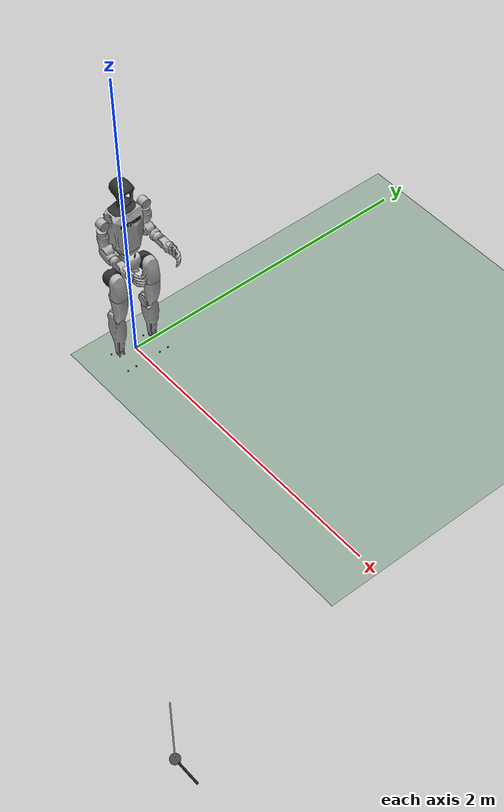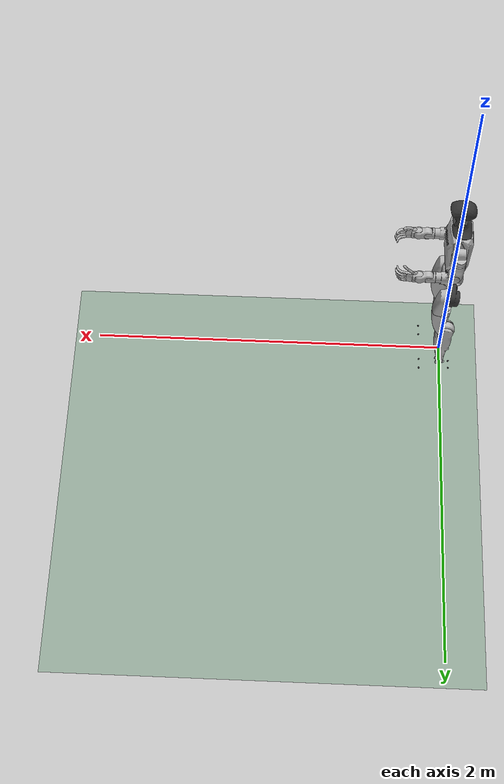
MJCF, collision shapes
<mujoco model="g1_29dof">
  <compiler angle="radian" meshdir="meshes"/>

  <option timestep="0.002" integrator="implicitfast"><flag island="disable"/></option>
  <default>
    <geom contype="1" conaffinity="1"/>
  </default>

  <asset>
    <mesh name="pelvis" file="pelvis.stl" maxhullvert="8"/>
    <mesh name="pelvis_contour_link" file="pelvis_contour_link.stl" maxhullvert="8"/>
    <mesh name="left_hip_pitch_link" file="left_hip_pitch_link.stl" maxhullvert="8"/>
    <mesh name="left_hip_roll_link" file="left_hip_roll_link.stl" maxhullvert="8"/>
    <mesh name="left_hip_yaw_link" file="left_hip_yaw_link.stl" maxhullvert="8"/>
    <mesh name="left_knee_link" file="left_knee_link.stl" maxhullvert="8"/>
    <mesh name="left_ankle_pitch_link" file="left_ankle_pitch_link.stl" maxhullvert="8"/>
    <mesh name="left_ankle_roll_link" file="left_ankle_roll_link.stl" maxhullvert="8"/>
    <mesh name="right_hip_pitch_link" file="right_hip_pitch_link.stl" maxhullvert="8"/>
    <mesh name="right_hip_roll_link" file="right_hip_roll_link.stl" maxhullvert="8"/>
    <mesh name="right_hip_yaw_link" file="right_hip_yaw_link.stl" maxhullvert="8"/>
    <mesh name="right_knee_link" file="right_knee_link.stl" maxhullvert="8"/>
    <mesh name="right_ankle_pitch_link" file="right_ankle_pitch_link.stl" maxhullvert="8"/>
    <mesh name="right_ankle_roll_link" file="right_ankle_roll_link.stl" maxhullvert="8"/>
    <mesh name="waist_yaw_link" file="waist_yaw_link.stl" maxhullvert="8"/>
    <mesh name="waist_roll_link" file="waist_roll_link.stl" maxhullvert="8"/>
    <mesh name="torso_link" file="torso_link.stl" maxhullvert="8"/>
    <mesh name="logo_link" file="logo_link.stl" maxhullvert="8"/>
    <mesh name="head_link" file="head_link.stl" maxhullvert="8"/>
    <mesh name="waist_support_link" file="waist_support_link.stl" maxhullvert="8"/>
    <mesh name="left_shoulder_pitch_link" file="left_shoulder_pitch_link.stl" maxhullvert="8"/>
    <mesh name="left_shoulder_roll_link" file="left_shoulder_roll_link.stl" maxhullvert="8"/>
    <mesh name="left_shoulder_yaw_link" file="left_shoulder_yaw_link.stl" maxhullvert="8"/>
    <mesh name="left_elbow_link" file="left_elbow_link.stl" maxhullvert="8"/>
    <mesh name="left_wrist_roll_link" file="left_wrist_roll_link.stl" maxhullvert="8"/>
    <mesh name="left_wrist_pitch_link" file="left_wrist_pitch_link.stl" maxhullvert="8"/>
    <mesh name="left_wrist_yaw_link" file="left_wrist_yaw_link.stl" maxhullvert="8"/>
    <mesh name="left_rubber_hand" file="left_rubber_hand.stl" maxhullvert="8"/>
    <mesh name="right_shoulder_pitch_link" file="right_shoulder_pitch_link.stl" maxhullvert="8"/>
    <mesh name="right_shoulder_roll_link" file="right_shoulder_roll_link.stl" maxhullvert="8"/>
    <mesh name="right_shoulder_yaw_link" file="right_shoulder_yaw_link.stl" maxhullvert="8"/>
    <mesh name="right_elbow_link" file="right_elbow_link.stl" maxhullvert="8"/>
    <mesh name="right_wrist_roll_link" file="right_wrist_roll_link.stl" maxhullvert="8"/>
    <mesh name="right_wrist_pitch_link" file="right_wrist_pitch_link.stl" maxhullvert="8"/>
    <mesh name="right_wrist_yaw_link" file="right_wrist_yaw_link.stl" maxhullvert="8"/>
    <mesh name="right_rubber_hand" file="right_rubber_hand.stl" maxhullvert="8"/>
  </asset>

  <worldbody>
    <body name="pelvis" pos="0 0 0.793">
      <inertial pos="0 0 -0.07605" quat="1 0 -0.000399148 0" mass="3.813" diaginertia="0.010549 0.0093089 0.0079184"/>
      <joint name="floating_base_joint" type="free" limited="false" actuatorfrclimited="false"/>
      <site name="imu_in_pelvis" size="0.01" pos="0.04525 0 -0.08339"/>
      <geom type="mesh" contype="0" conaffinity="0" group="1" density="0" rgba="0.2 0.2 0.2 1" mesh="pelvis"/>
      <geom type="mesh" contype="0" conaffinity="0" group="1" density="0" rgba="0.7 0.7 0.7 1" mesh="pelvis_contour_link"/>
      <geom type="mesh" rgba="0.7 0.7 0.7 0" mesh="pelvis_contour_link"/>
      <body name="left_hip_pitch_link" pos="0 0.064452 -0.1027">
        <inertial pos="0.002741 0.047791 -0.02606" quat="0.954862 0.293964 0.0302556 0.030122" mass="1.35" diaginertia="0.00181517 0.00153422 0.00116212"/>
        <joint name="left_hip_pitch_joint" pos="0 0 0" axis="0 1 0" range="-2.5307 2.8798" actuatorfrcrange="-88 88" armature="0.025101925" damping="0.01" frictionloss="0.01"/>
        <geom type="mesh" contype="0" conaffinity="0" group="1" density="0" rgba="0.2 0.2 0.2 1" mesh="left_hip_pitch_link"/>
        <geom type="mesh" rgba="0.2 0.2 0.2 0" mesh="left_hip_pitch_link"/>
        <body name="left_hip_roll_link" pos="0 0.052 -0.030465" quat="0.996179 0 -0.0873386 0">
          <inertial pos="0.029812 -0.001045 -0.087934" quat="0.977808 -1.97119e-05 0.205576 -0.0403793" mass="1.52" diaginertia="0.00254986 0.00241169 0.00148755"/>
          <joint name="left_hip_roll_joint" pos="0 0 0" axis="1 0 0" range="-0.5236 2.9671" actuatorfrcrange="-88 88" armature="0.025101925" damping="0.01" frictionloss="0.01"/>
          <geom type="mesh" contype="0" conaffinity="0" group="1" density="0" rgba="0.7 0.7 0.7 1" mesh="left_hip_roll_link"/>
          <geom type="mesh" rgba="0.7 0.7 0.7 0" mesh="left_hip_roll_link"/>
          <body name="left_hip_yaw_link" pos="0.025001 0 -0.12412">
            <inertial pos="-0.057709 -0.010981 -0.15078" quat="0.600598 0.15832 0.223482 0.751181" mass="1.702" diaginertia="0.00776166 0.00717575 0.00160139"/>
            <joint name="left_hip_yaw_joint" pos="0 0 0" axis="0 0 1" range="-2.7576 2.7576" actuatorfrcrange="-88 88" armature="0.01017752" damping="0.01" frictionloss="0.01"/>
            <geom type="mesh" contype="0" conaffinity="0" group="1" density="0" rgba="0.7 0.7 0.7 1" mesh="left_hip_yaw_link"/>
            <geom type="mesh" rgba="0.7 0.7 0.7 0" mesh="left_hip_yaw_link"/>
            <body name="left_knee_link" pos="-0.078273 0.0021489 -0.17734" quat="0.996179 0 0.0873386 0">
              <inertial pos="0.005457 0.003964 -0.12074" quat="0.923418 -0.0327699 0.0158246 0.382067" mass="1.932" diaginertia="0.0113804 0.0112778 0.00146458"/>
              <joint name="left_knee_joint" pos="0 0 0" axis="0 1 0" range="-0.087267 2.8798" actuatorfrcrange="-139 139" armature="0.025101925" damping="0.01" frictionloss="0.01"/>
              <geom type="mesh" contype="0" conaffinity="0" group="1" density="0" rgba="0.7 0.7 0.7 1" mesh="left_knee_link"/>
              <geom type="mesh" rgba="0.7 0.7 0.7 0" mesh="left_knee_link"/>
              <body name="left_ankle_pitch_link" pos="0 -9.4445e-05 -0.30001">
                <inertial pos="-0.007269 0 0.011137" quat="0.603053 0.369225 0.369225 0.603053" mass="0.074" diaginertia="1.89e-05 1.40805e-05 6.9195e-06"/>
                <joint name="left_ankle_pitch_joint" pos="0 0 0" axis="0 1 0" range="-0.87267 0.5236" actuatorfrcrange="-50 50" armature="0.00721945" damping="0.01" frictionloss="0.01"/>
                <geom type="mesh" contype="0" conaffinity="0" group="1" density="0" rgba="0.7 0.7 0.7 1" mesh="left_ankle_pitch_link"/>
                <geom type="mesh" rgba="0.7 0.7 0.7 0" mesh="left_ankle_pitch_link"/>
                <body name="left_ankle_roll_link" pos="0 0 -0.017558">
                  <inertial pos="0.026505 0 -0.016425" quat="-0.000481092 0.728482 -0.000618967 0.685065" mass="0.608" diaginertia="0.00167218 0.0016161 0.000217621"/>
                  <joint name="left_ankle_roll_joint" pos="0 0 0" axis="1 0 0" range="-0.2618 0.2618" actuatorfrcrange="-50 50" armature="0.00721945" damping="0.01" frictionloss="0.01"/>
                  <geom type="mesh" contype="0" conaffinity="0" group="1" density="0" rgba="0.2 0.2 0.2 1" mesh="left_ankle_roll_link"/>
                  <site name="left_foot_site" size="0.01" pos="0 0 0"/>
                  <geom size="0.005" pos="-0.05 0.025 -0.03" rgba="0.2 0.2 0.2 0"/>
                  <geom size="0.005" pos="-0.05 -0.025 -0.03" rgba="0.2 0.2 0.2 0"/>
                  <geom size="0.005" pos="0.12 0.03 -0.03" rgba="0.2 0.2 0.2 0"/>
                  <geom size="0.005" pos="0.12 -0.03 -0.03" rgba="0.2 0.2 0.2 0"/>
                </body>
              </body>
            </body>
          </body>
        </body>
      </body>
      <body name="right_hip_pitch_link" pos="0 -0.064452 -0.1027">
        <inertial pos="0.002741 -0.047791 -0.02606" quat="0.954862 -0.293964 0.0302556 -0.030122" mass="1.35" diaginertia="0.00181517 0.00153422 0.00116212"/>
        <joint name="right_hip_pitch_joint" pos="0 0 0" axis="0 1 0" range="-2.5307 2.8798" actuatorfrcrange="-88 88" armature="0.025101925" damping="0.01" frictionloss="0.01"/>
        <geom type="mesh" contype="0" conaffinity="0" group="1" density="0" rgba="0.2 0.2 0.2 1" mesh="right_hip_pitch_link"/>
        <geom type="mesh" rgba="0.2 0.2 0.2 0" mesh="right_hip_pitch_link"/>
        <body name="right_hip_roll_link" pos="0 -0.052 -0.030465" quat="0.996179 0 -0.0873386 0">
          <inertial pos="0.029812 0.001045 -0.087934" quat="0.977808 1.97119e-05 0.205576 0.0403793" mass="1.52" diaginertia="0.00254986 0.00241169 0.00148755"/>
          <joint name="right_hip_roll_joint" pos="0 0 0" axis="1 0 0" range="-2.9671 0.5236" actuatorfrcrange="-88 88" armature="0.025101925" damping="0.01" frictionloss="0.01"/>
          <geom type="mesh" contype="0" conaffinity="0" group="1" density="0" rgba="0.7 0.7 0.7 1" mesh="right_hip_roll_link"/>
          <geom type="mesh" rgba="0.7 0.7 0.7 0" mesh="right_hip_roll_link"/>
          <body name="right_hip_yaw_link" pos="0.025001 0 -0.12412">
            <inertial pos="-0.057709 0.010981 -0.15078" quat="0.751181 0.223482 0.15832 0.600598" mass="1.702" diaginertia="0.00776166 0.00717575 0.00160139"/>
            <joint name="right_hip_yaw_joint" pos="0 0 0" axis="0 0 1" range="-2.7576 2.7576" actuatorfrcrange="-88 88" armature="0.01017752" damping="0.01" frictionloss="0.01"/>
            <geom type="mesh" contype="0" conaffinity="0" group="1" density="0" rgba="0.7 0.7 0.7 1" mesh="right_hip_yaw_link"/>
            <geom type="mesh" rgba="0.7 0.7 0.7 0" mesh="right_hip_yaw_link"/>
            <body name="right_knee_link" pos="-0.078273 -0.0021489 -0.17734" quat="0.996179 0 0.0873386 0">
              <inertial pos="0.005457 -0.003964 -0.12074" quat="0.923439 0.0345276 0.0116333 -0.382012" mass="1.932" diaginertia="0.011374 0.0112843 0.00146452"/>
              <joint name="right_knee_joint" pos="0 0 0" axis="0 1 0" range="-0.087267 2.8798" actuatorfrcrange="-139 139" armature="0.025101925" damping="0.01" frictionloss="0.01"/>
              <geom type="mesh" contype="0" conaffinity="0" group="1" density="0" rgba="0.7 0.7 0.7 1" mesh="right_knee_link"/>
              <geom type="mesh" rgba="0.7 0.7 0.7 0" mesh="right_knee_link"/>
              <body name="right_ankle_pitch_link" pos="0 9.4445e-05 -0.30001">
                <inertial pos="-0.007269 0 0.011137" quat="0.603053 0.369225 0.369225 0.603053" mass="0.074" diaginertia="1.89e-05 1.40805e-05 6.9195e-06"/>
                <joint name="right_ankle_pitch_joint" pos="0 0 0" axis="0 1 0" range="-0.87267 0.5236" actuatorfrcrange="-50 50" armature="0.00721945" damping="0.01" frictionloss="0.01"/>
                <geom type="mesh" contype="0" conaffinity="0" group="1" density="0" rgba="0.7 0.7 0.7 1" mesh="right_ankle_pitch_link"/>
                <geom type="mesh" rgba="0.7 0.7 0.7 0" mesh="right_ankle_pitch_link"/>
                <body name="right_ankle_roll_link" pos="0 0 -0.017558">
                  <inertial pos="0.026505 0 -0.016425" quat="0.000481092 0.728482 0.000618967 0.685065" mass="0.608" diaginertia="0.00167218 0.0016161 0.000217621"/>
                  <joint name="right_ankle_roll_joint" pos="0 0 0" axis="1 0 0" range="-0.2618 0.2618" actuatorfrcrange="-50 50" armature="0.00721945" damping="0.01" frictionloss="0.01"/>
                  <geom type="mesh" contype="0" conaffinity="0" group="1" density="0" rgba="0.2 0.2 0.2 1" mesh="right_ankle_roll_link"/>
                  <site name="right_foot_site" size="0.01" pos="0 0 0"/>
                  <geom size="0.005" pos="-0.05 0.025 -0.03" rgba="0.2 0.2 0.2 0"/>
                  <geom size="0.005" pos="-0.05 -0.025 -0.03" rgba="0.2 0.2 0.2 0"/>
                  <geom size="0.005" pos="0.12 0.03 -0.03" rgba="0.2 0.2 0.2 0"/>
                  <geom size="0.005" pos="0.12 -0.03 -0.03" rgba="0.2 0.2 0.2 0"/>
                </body>
              </body>
            </body>
          </body>
        </body>
      </body>
      <body name="waist_yaw_link">
        <inertial pos="0.003964 0 0.018769" quat="-0.0178291 0.628464 0.0282471 0.777121" mass="0.244" diaginertia="0.000158561 0.000124229 9.67669e-05"/>
        <joint name="waist_yaw_joint" pos="0 0 0" axis="0 0 1" range="-2.618 2.618" actuatorfrcrange="-88 88" armature="0.01017752" damping="0.01" frictionloss="0.01"/>
        <geom type="mesh" contype="0" conaffinity="0" group="1" density="0" rgba="0.7 0.7 0.7 1" mesh="waist_yaw_link"/>
        <body name="waist_roll_link" pos="-0.0039635 0 0.035">
          <inertial pos="0 -0.000236 0.010111" quat="0.99979 0.020492 0 0" mass="0.047" diaginertia="7.515e-06 6.40206e-06 3.98394e-06"/>
          <joint name="waist_roll_joint" pos="0 0 0" axis="1 0 0" range="-0.52 0.52" actuatorfrcrange="-50 50" armature="0.00721945" damping="0.01" frictionloss="0.01"/>
          <geom type="mesh" contype="0" conaffinity="0" group="1" density="0" rgba="0.7 0.7 0.7 1" mesh="waist_roll_link"/>
          <body name="torso_link" pos="0 0 0.019">
            <inertial pos="0.00331658 0.000261533 0.179856" quat="0.999831 0.000376204 0.0179895 -0.00377704" mass="9.598" diaginertia="0.12407 0.111951 0.0325382"/>
            <joint name="waist_pitch_joint" pos="0 0 0" axis="0 1 0" range="-0.52 0.52" actuatorfrcrange="-50 50" armature="0.00721945" damping="0.01" frictionloss="0.01"/>
            <geom type="mesh" contype="0" conaffinity="0" group="1" density="0" rgba="0.7 0.7 0.7 1" mesh="torso_link"/>
            <geom type="mesh" rgba="0.7 0.7 0.7 0" mesh="torso_link"/>
            <geom pos="0.0039635 0 -0.054" quat="1 0 0 0" type="mesh" contype="0" conaffinity="0" group="1" density="0" rgba="0.2 0.2 0.2 1" mesh="logo_link"/>
            <geom pos="0.0039635 0 -0.054" quat="1 0 0 0" type="mesh" rgba="0.2 0.2 0.2 0" mesh="logo_link"/>
            <geom pos="0.0039635 0 -0.054" type="mesh" contype="0" conaffinity="0" group="1" density="0" rgba="0.2 0.2 0.2 1" mesh="head_link"/>
            <geom pos="0.0039635 0 -0.054" type="mesh" rgba="0.2 0.2 0.2 0" mesh="head_link"/>
            <geom pos="0.0039635 0 -0.054" quat="1 0 0 0" type="mesh" contype="0" conaffinity="0" group="1" density="0" rgba="0.7 0.7 0.7 1" mesh="waist_support_link"/>
            <geom pos="0.0039635 0 -0.054" quat="1 0 0 0" type="mesh" rgba="0.7 0.7 0.7 0" mesh="waist_support_link"/>
            <body name="left_shoulder_pitch_link" pos="0.0039563 0.10022 0.23778" quat="0.990264 0.139201 1.38722e-05 -9.86868e-05">
              <inertial pos="0 0.035892 -0.011628" quat="0.654152 0.0130458 -0.326267 0.68225" mass="0.718" diaginertia="0.000465864 0.000432842 0.000406394"/>
              <joint name="left_shoulder_pitch_joint" pos="0 0 0" axis="0 1 0" range="-3.0892 2.6704" actuatorfrcrange="-25 25" armature="0.003609725" damping="0.01" frictionloss="0.01"/>
              <geom type="mesh" contype="0" conaffinity="0" group="1" density="0" rgba="0.7 0.7 0.7 1" mesh="left_shoulder_pitch_link"/>
              <geom size="0.03 0.025" pos="0 0.04 -0.01" quat="0.707107 0 0.707107 0" type="cylinder" rgba="0.7 0.7 0.7 0"/>
              <body name="left_shoulder_roll_link" pos="0 0.038 -0.013831" quat="0.990268 -0.139172 0 0">
                <inertial pos="-0.000227 0.00727 -0.063243" quat="0.701256 -0.0196223 -0.00710317 0.712604" mass="0.643" diaginertia="0.000691311 0.000618011 0.000388977"/>
                <joint name="left_shoulder_roll_joint" pos="0 0 0" axis="1 0 0" range="-1.5882 2.2515" actuatorfrcrange="-25 25" armature="0.003609725" damping="0.01" frictionloss="0.01"/>
                <geom type="mesh" contype="0" conaffinity="0" group="1" density="0" rgba="0.7 0.7 0.7 1" mesh="left_shoulder_roll_link"/>
                <geom size="0.03 0.015" pos="-0.004 0.006 -0.053" type="cylinder" rgba="0.7 0.7 0.7 0"/>
                <body name="left_shoulder_yaw_link" pos="0 0.00624 -0.1032">
                  <inertial pos="0.010773 -0.002949 -0.072009" quat="0.716879 -0.0964829 -0.0679942 0.687134" mass="0.734" diaginertia="0.00106187 0.00103217 0.000400661"/>
                  <joint name="left_shoulder_yaw_joint" pos="0 0 0" axis="0 0 1" range="-2.618 2.618" actuatorfrcrange="-25 25" armature="0.003609725" damping="0.01" frictionloss="0.01"/>
                  <geom type="mesh" contype="0" conaffinity="0" group="1" density="0" rgba="0.7 0.7 0.7 1" mesh="left_shoulder_yaw_link"/>
                  <geom type="mesh" rgba="0.7 0.7 0.7 0" mesh="left_shoulder_yaw_link"/>
                  <body name="left_elbow_link" pos="0.015783 0 -0.080518">
                    <inertial pos="0.064956 0.004454 -0.010062" quat="0.541765 0.636132 0.388821 0.388129" mass="0.6" diaginertia="0.000443035 0.000421612 0.000259353"/>
                    <joint name="left_elbow_joint" pos="0 0 0" axis="0 1 0" range="-1.0472 2.0944" actuatorfrcrange="-25 25" armature="0.003609725" damping="0.01" frictionloss="0.01"/>
                    <geom type="mesh" contype="0" conaffinity="0" group="1" density="0" rgba="0.7 0.7 0.7 1" mesh="left_elbow_link"/>
                    <geom type="mesh" rgba="0.7 0.7 0.7 0" mesh="left_elbow_link"/>
                    <body name="left_wrist_roll_link" pos="0.1 0.00188791 -0.01">
                      <inertial pos="0.0171394 0.000537591 4.8864e-07" quat="0.575338 0.411667 -0.574906 0.411094" mass="0.085445" diaginertia="5.48211e-05 4.96646e-05 3.57798e-05"/>
                      <joint name="left_wrist_roll_joint" pos="0 0 0" axis="1 0 0" range="-1.97222 1.97222" actuatorfrcrange="-25 25" armature="0.003609725" damping="0.01" frictionloss="0.01"/>
                      <geom type="mesh" contype="0" conaffinity="0" group="1" density="0" rgba="0.7 0.7 0.7 1" mesh="left_wrist_roll_link"/>
                      <geom type="mesh" rgba="0.7 0.7 0.7 0" mesh="left_wrist_roll_link"/>
                      <body name="left_wrist_pitch_link" pos="0.038 0 0">
                        <inertial pos="0.0229999 -0.00111685 -0.00111658" quat="0.249998 0.661363 0.293036 0.643608" mass="0.48405" diaginertia="0.000430353 0.000429873 0.000164648"/>
                        <joint name="left_wrist_pitch_joint" pos="0 0 0" axis="0 1 0" range="-1.61443 1.61443" actuatorfrcrange="-5 5" armature="0.00425" damping="0.01" frictionloss="0.01"/>
                        <geom type="mesh" contype="0" conaffinity="0" group="1" density="0" rgba="0.7 0.7 0.7 1" mesh="left_wrist_pitch_link"/>
                        <geom type="mesh" rgba="0.7 0.7 0.7 0" mesh="left_wrist_pitch_link"/>
                        <body name="left_wrist_yaw_link" pos="0.046 0 0">
                          <inertial pos="0.0708244 0.000191745 0.00161742" quat="0.510571 0.526295 0.468078 0.493188" mass="0.254576" diaginertia="0.000646113 0.000559993 0.000147566"/>
                          <joint name="left_wrist_yaw_joint" pos="0 0 0" axis="0 0 1" range="-1.61443 1.61443" actuatorfrcrange="-5 5" armature="0.00425" damping="0.01" frictionloss="0.01"/>
                          <geom type="mesh" contype="0" conaffinity="0" group="1" density="0" rgba="0.7 0.7 0.7 1" mesh="left_wrist_yaw_link"/>
                          <geom type="mesh" rgba="0.7 0.7 0.7 0" mesh="left_wrist_yaw_link"/>
                          <geom type="mesh" contype="0" conaffinity="0" group="1" density="0" rgba="0.7 0.7 0.7 1" mesh="left_rubber_hand"/>
                          <geom type="mesh" rgba="0.7 0.7 0.7 0" mesh="left_rubber_hand"/>
                        </body>
                      </body>
                    </body>
                  </body>
                </body>
              </body>
            </body>
            <body name="right_shoulder_pitch_link" pos="0.0039563 -0.10021 0.23778" quat="0.990264 -0.139201 1.38722e-05 9.86868e-05">
              <inertial pos="0 -0.035892 -0.011628" quat="0.68225 -0.326267 0.0130458 0.654152" mass="0.718" diaginertia="0.000465864 0.000432842 0.000406394"/>
              <joint name="right_shoulder_pitch_joint" pos="0 0 0" axis="0 1 0" range="-3.0892 2.6704" actuatorfrcrange="-25 25" armature="0.003609725" damping="0.01" frictionloss="0.01"/>
              <geom type="mesh" contype="0" conaffinity="0" group="1" density="0" rgba="0.7 0.7 0.7 1" mesh="right_shoulder_pitch_link"/>
              <geom size="0.03 0.025" pos="0 -0.04 -0.01" quat="0.707107 0 0.707107 0" type="cylinder" rgba="0.7 0.7 0.7 0"/>
              <body name="right_shoulder_roll_link" pos="0 -0.038 -0.013831" quat="0.990268 0.139172 0 0">
                <inertial pos="-0.000227 -0.00727 -0.063243" quat="0.712604 -0.00710317 -0.0196223 0.701256" mass="0.643" diaginertia="0.000691311 0.000618011 0.000388977"/>
                <joint name="right_shoulder_roll_joint" pos="0 0 0" axis="1 0 0" range="-2.2515 1.5882" actuatorfrcrange="-25 25" armature="0.003609725" damping="0.01" frictionloss="0.01"/>
                <geom type="mesh" contype="0" conaffinity="0" group="1" density="0" rgba="0.7 0.7 0.7 1" mesh="right_shoulder_roll_link"/>
                <geom size="0.03 0.015" pos="-0.004 -0.006 -0.053" type="cylinder" rgba="0.7 0.7 0.7 0"/>
                <body name="right_shoulder_yaw_link" pos="0 -0.00624 -0.1032">
                  <inertial pos="0.010773 0.002949 -0.072009" quat="0.687134 -0.0679942 -0.0964829 0.716879" mass="0.734" diaginertia="0.00106187 0.00103217 0.000400661"/>
                  <joint name="right_shoulder_yaw_joint" pos="0 0 0" axis="0 0 1" range="-2.618 2.618" actuatorfrcrange="-25 25" armature="0.003609725" damping="0.01" frictionloss="0.01"/>
                  <geom type="mesh" contype="0" conaffinity="0" group="1" density="0" rgba="0.7 0.7 0.7 1" mesh="right_shoulder_yaw_link"/>
                  <geom type="mesh" rgba="0.7 0.7 0.7 0" mesh="right_shoulder_yaw_link"/>
                  <body name="right_elbow_link" pos="0.015783 0 -0.080518">
                    <inertial pos="0.064956 -0.004454 -0.010062" quat="0.388129 0.388821 0.636132 0.541765" mass="0.6" diaginertia="0.000443035 0.000421612 0.000259353"/>
                    <joint name="right_elbow_joint" pos="0 0 0" axis="0 1 0" range="-1.0472 2.0944" actuatorfrcrange="-25 25" armature="0.003609725" damping="0.01" frictionloss="0.01"/>
                    <geom type="mesh" contype="0" conaffinity="0" group="1" density="0" rgba="0.7 0.7 0.7 1" mesh="right_elbow_link"/>
                    <geom type="mesh" rgba="0.7 0.7 0.7 0" mesh="right_elbow_link"/>
                    <body name="right_wrist_roll_link" pos="0.1 -0.00188791 -0.01">
                      <inertial pos="0.0171394 -0.000537591 4.8864e-07" quat="0.411667 0.575338 -0.411094 0.574906" mass="0.085445" diaginertia="5.48211e-05 4.96646e-05 3.57798e-05"/>
                      <joint name="right_wrist_roll_joint" pos="0 0 0" axis="1 0 0" range="-1.97222 1.97222" actuatorfrcrange="-25 25" armature="0.003609725" damping="0.01" frictionloss="0.01"/>
                      <geom type="mesh" contype="0" conaffinity="0" group="1" density="0" rgba="0.7 0.7 0.7 1" mesh="right_wrist_roll_link"/>
                      <geom type="mesh" rgba="0.7 0.7 0.7 0" mesh="right_wrist_roll_link"/>
                      <body name="right_wrist_pitch_link" pos="0.038 0 0">
                        <inertial pos="0.0229999 0.00111685 -0.00111658" quat="0.643608 0.293036 0.661363 0.249998" mass="0.48405" diaginertia="0.000430353 0.000429873 0.000164648"/>
                        <joint name="right_wrist_pitch_joint" pos="0 0 0" axis="0 1 0" range="-1.61443 1.61443" actuatorfrcrange="-5 5" armature="0.00425" damping="0.01" frictionloss="0.01"/>
                        <geom type="mesh" contype="0" conaffinity="0" group="1" density="0" rgba="0.7 0.7 0.7 1" mesh="right_wrist_pitch_link"/>
                        <geom type="mesh" rgba="0.7 0.7 0.7 0" mesh="right_wrist_pitch_link"/>
                        <body name="right_wrist_yaw_link" pos="0.046 0 0">
                          <inertial pos="0.0708244 -0.000191745 0.00161742" quat="0.493188 0.468078 0.526295 0.510571" mass="0.254576" diaginertia="0.000646113 0.000559993 0.000147566"/>
                          <joint name="right_wrist_yaw_joint" pos="0 0 0" axis="0 0 1" range="-1.61443 1.61443" actuatorfrcrange="-5 5" armature="0.00425" damping="0.01" frictionloss="0.01"/>
                          <geom type="mesh" contype="0" conaffinity="0" group="1" density="0" rgba="0.7 0.7 0.7 1" mesh="right_wrist_yaw_link"/>
                          <geom type="mesh" rgba="0.7 0.7 0.7 0" mesh="right_wrist_yaw_link"/>
                          <geom type="mesh" contype="0" conaffinity="0" group="1" density="0" rgba="0.7 0.7 0.7 1" mesh="right_rubber_hand"/>
                          <geom type="mesh" rgba="0.7 0.7 0.7 0" mesh="right_rubber_hand"/>
                        </body>
                      </body>
                    </body>
                  </body>
                </body>
              </body>
            </body>
          </body>
        </body>
      </body>
    </body>
  </worldbody>

  <actuator>
    <motor name="left_hip_pitch_joint" joint="left_hip_pitch_joint"/>
    <motor name="left_hip_roll_joint" joint="left_hip_roll_joint"/>
    <motor name="left_hip_yaw_joint" joint="left_hip_yaw_joint"/>
    <motor name="left_knee_joint" joint="left_knee_joint"/>
    <motor name="left_ankle_pitch_joint" joint="left_ankle_pitch_joint"/>
    <motor name="left_ankle_roll_joint" joint="left_ankle_roll_joint"/>
    <motor name="right_hip_pitch_joint" joint="right_hip_pitch_joint"/>
    <motor name="right_hip_roll_joint" joint="right_hip_roll_joint"/>
    <motor name="right_hip_yaw_joint" joint="right_hip_yaw_joint"/>
    <motor name="right_knee_joint" joint="right_knee_joint"/>
    <motor name="right_ankle_pitch_joint" joint="right_ankle_pitch_joint"/>
    <motor name="right_ankle_roll_joint" joint="right_ankle_roll_joint"/>
    <motor name="waist_yaw_joint" joint="waist_yaw_joint"/>
    <motor name="waist_roll_joint" joint="waist_roll_joint"/>
    <motor name="waist_pitch_joint" joint="waist_pitch_joint"/>
    <motor name="left_shoulder_pitch_joint" joint="left_shoulder_pitch_joint"/>
    <motor name="left_shoulder_roll_joint" joint="left_shoulder_roll_joint"/>
    <motor name="left_shoulder_yaw_joint" joint="left_shoulder_yaw_joint"/>
    <motor name="left_elbow_joint" joint="left_elbow_joint"/>
    <motor name="left_wrist_roll_joint" joint="left_wrist_roll_joint"/>
    <motor name="left_wrist_pitch_joint" joint="left_wrist_pitch_joint"/>
    <motor name="left_wrist_yaw_joint" joint="left_wrist_yaw_joint"/>
    <motor name="right_shoulder_pitch_joint" joint="right_shoulder_pitch_joint"/>
    <motor name="right_shoulder_roll_joint" joint="right_shoulder_roll_joint"/>
    <motor name="right_shoulder_yaw_joint" joint="right_shoulder_yaw_joint"/>
    <motor name="right_elbow_joint" joint="right_elbow_joint"/>
    <motor name="right_wrist_roll_joint" joint="right_wrist_roll_joint"/>
    <motor name="right_wrist_pitch_joint" joint="right_wrist_pitch_joint"/>
    <motor name="right_wrist_yaw_joint" joint="right_wrist_yaw_joint"/>
  </actuator>

  <sensor>
    <framequat     name="imu_quat"   objtype="site" objname="imu_in_pelvis"/>
    <gyro          name="imu_gyro"   site="imu_in_pelvis"/>
    <accelerometer name="imu_acc"    site="imu_in_pelvis"/>
    <framelinvel    name="pelvis_vel" objtype="body" objname="pelvis"/>
    <framelinvel    name="torso_vel"  objtype="body" objname="torso_link"/>
    <framelinvel    name="left_foot_vel"  objtype="body" objname="left_ankle_roll_link"/>
    <framelinvel    name="right_foot_vel" objtype="body" objname="right_ankle_roll_link"/>
    <force          name="left_foot_force"  site="left_foot_site"/>
    <force          name="right_foot_force" site="right_foot_site"/>
  </sensor>

  <statistic center="0 0 0.8" extent="2.0"/>
  <visual>

    <headlight diffuse="0.6 0.6 0.6" ambient="0.1 0.1 0.1" specular="0 0 0"/>
    <rgba haze="0.1804 0.4353 0.2510 1"/>
    <global azimuth="-140" elevation="-20"/>
  </visual>

  <asset>
    <texture type="skybox" builtin="gradient" rgb1="0.1804 0.4353 0.2510" rgb2="0.1804 0.4353 0.2510" width="512" height="3072"/>

    <material name="groundplane" rgba="0.1804 0.4353 0.2510 1" specular="0" shininess="0" reflectance="0"/>
    <texture type="2d" name="floor_label" builtin="flat" width="2048" height="2048"
             rgb1="0.1804 0.4353 0.2510"/>
    <material name="floor_label" texture="floor_label" texuniform="false" texrepeat="1 1" specular="0" shininess="0" reflectance="0"/>
  </asset>

  <worldbody>
    <light pos="1 0 3.5" dir="0 0 -1" directional="true" specular="0 0 0"/>
    <geom name="floor" size="0 0 0.05" type="plane" material="groundplane" contype="1" conaffinity="0"/>

    <geom name="floor_mark" size="2.5 2.5 0.05" pos="0.3 0 0.001" type="plane" material="floor_label" contype="0" conaffinity="0"/>

    <body name="target" mocap="true" pos="0 0 -5">
      <geom type="sphere" size="0.05" rgba="0 0 0 0.6" contype="0" conaffinity="0" density="0"/>
      <geom type="cylinder" fromto="0 0 0 0 0 0.9" size="0.006" rgba="0 0 0 0.35" contype="0" conaffinity="0" density="0"/>
    </body>
    <body name="target_heading" mocap="true" pos="0 0 -5">
      <geom type="cylinder" fromto="0 0 0 0.30 0 0" size="0.010" rgba="0 0 0 0.8" contype="0" conaffinity="0" density="0"/>
    </body>
  </worldbody>
</mujoco>
